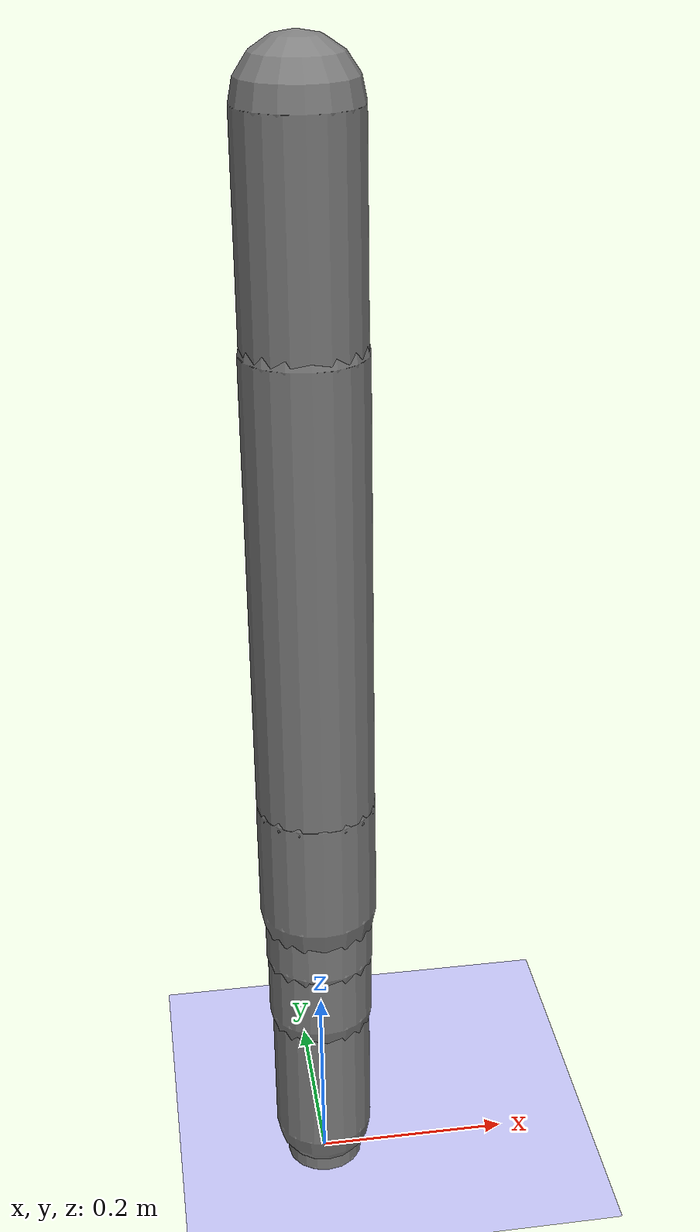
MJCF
<?xml version='1.0' encoding='UTF-8'?>
<mujoco model="robot_model">
  <worldbody>
    <light name="light" pos="0 -3 10" dir="0 0.5 -1" diffuse=".8 .8 .8" specular="0.1 0.1 0.1"/>
    <geom name="floor" type="plane" size="10.0 10.0 0.1" pos="0 0 0" rgba="0.8 0.8 1 1"/>
    <body name="limb0" pos="0 0 0">
      <geom type="capsule" fromto="0 0 0 0 0 0.26233138165368997" size="0.04" density="618.327238250405"/>
      <site type="sphere" size="0.01" name="limb0_site0" pos="0 0 0.19830642828510836"/>
      <site type="sphere" size="0.01" name="limb0_site1" pos="0 0 0.04560058574401782"/>
      <freejoint name="limb0_root"/>
      <body name="limb1" pos="0 0 0.19830642828510836">
        <geom type="capsule" fromto="0 0 0 0 0 0.3827693687641604" size="0.05450373825606916" density="584.4061455168376"/>
        <site type="sphere" size="0.01" name="limb1_site0" pos="0 0 0.1275255353171341"/>
        <body name="limb2" pos="0 0 0.1275255353171341">
          <geom type="capsule" fromto="0 0 0 0 0 0.12406041482013717" size="0.06" density="986.2150518331317"/>
          <site type="sphere" size="0.01" name="limb2_site0" pos="0 0 0.10649884769039768"/>
          <body name="limb3" pos="0 0 0.10649884769039768">
            <geom type="capsule" fromto="0 0 0 0 0 0.3246346816300574" size="0.027985800535247497" density="877.8764988614424"/>
            <site type="sphere" size="0.01" name="limb3_site0" pos="0 0 0.30592291138675143"/>
            <body name="limb4" pos="0 0 0.30592291138675143">
              <geom type="capsule" fromto="0 0 0 0 0 0.38664313349290746" size="0.05825338637690475" density="1129.6842087872121"/>
              <joint name="joint_limb3_limb4_0" type="hinge" axis="0 0 1" range="-32.23675465955068 32.23675465955068" damping="5.0"/>
            </body>
            <joint name="joint_limb2_limb3_0" type="hinge" axis="1 0 0" range="-102.98912811609488 102.98912811609488" damping="5.0"/>
          </body>
          <joint name="joint_limb1_limb2_0" type="hinge" axis="1 0 0" range="-52.283974665468925 52.283974665468925" damping="5.0"/>
        </body>
        <joint name="joint_limb0_limb1_0" type="hinge" axis="0 1 0" range="-118.27639451941653 118.27639451941653" damping="5.0"/>
      </body>
      <body name="limb5" pos="0 0 0.04560058574401782">
        <geom type="capsule" fromto="0 0 0 0 0 0.22512675434995574" size="0.05169031872016689" density="728.5632008156655"/>
        <site type="sphere" size="0.01" name="limb5_site0" pos="0 0 0.04112360060909631"/>
        <site type="sphere" size="0.01" name="limb5_site1" pos="0 0 0.1653112235324185"/>
        <body name="limb6" pos="0 0 0.04112360060909631">
          <geom type="capsule" fromto="0 0 0 0 0 0.49506834786402915" size="0.03678532303791788" density="732.350866634508"/>
          <site type="sphere" size="0.01" name="limb6_site0" pos="0 0 0.48864896668293684"/>
          <site type="sphere" size="0.01" name="limb6_site1" pos="0 0 0.17997974781822323"/>
          <body name="limb7" pos="0 0 0.48864896668293684">
            <geom type="capsule" fromto="0 0 0 0 0 0.19835280866970714" size="0.04411414027217507" density="507.15314310444455"/>
            <site type="sphere" size="0.01" name="limb7_site0" pos="0 0 0.1502248823307766"/>
            <body name="limb8" pos="0 0 0.1502248823307766">
              <geom type="capsule" fromto="0 0 0 0 0 0.19891389615533042" size="0.030325208070064356" density="1018.0930803065299"/>
              <joint name="joint_limb7_limb8_0" type="hinge" axis="0 0 1" range="-114.27914104368337 114.27914104368337" damping="5.0"/>
            </body>
            <joint name="joint_limb6_limb7_0" type="hinge" axis="0 1 0" range="-101.73901430779064 101.73901430779064" damping="5.0"/>
          </body>
          <body name="limb9" pos="0 0 0.17997974781822323">
            <geom type="capsule" fromto="0 0 0 0 0 0.17894284299821797" size="0.05566483344233837" density="599.4961849034263"/>
            <joint name="joint_limb6_limb9_0" type="hinge" axis="1 0 0" range="-75.18819932201001 75.18819932201001" damping="5.0"/>
          </body>
          <joint name="joint_limb5_limb6_0" type="hinge" axis="0 0 1" range="-98.208106043741 98.208106043741" damping="5.0"/>
        </body>
        <body name="limb10" pos="0 0 0.1653112235324185">
          <geom type="capsule" fromto="0 0 0 0 0 0.2879295497092825" size="0.04990344700900342" density="660.7067265019084"/>
          <site type="sphere" size="0.01" name="limb10_site0" pos="0 0 0.23449394497914045"/>
          <body name="limb11" pos="0 0 0.23449394497914045">
            <geom type="capsule" fromto="0 0 0 0 0 0.4676759956951593" size="0.05966738873335552" density="631.8729198528299"/>
            <joint name="joint_limb10_limb11_0" type="hinge" axis="1 0 0" range="-113.7215958826881 113.7215958826881" damping="5.0"/>
          </body>
          <joint name="joint_limb5_limb10_0" type="hinge" axis="1 0 0" range="-85.42010042852904 85.42010042852904" damping="5.0"/>
        </body>
        <joint name="joint_limb0_limb5_0" type="hinge" axis="0 0 1" range="-96.21716630603876 96.21716630603876" damping="5.0"/>
      </body>
    </body>
  </worldbody>
  <actuator>
    <position name="position_actuator_joint_limb0_limb1_0" joint="joint_limb0_limb1_0" gear="1.143090706227208" inheritrange="1" kp="10.0"/>
    <position name="position_actuator_joint_limb1_limb2_0" joint="joint_limb1_limb2_0" gear="1.7590088496875573" inheritrange="1" kp="10.0"/>
    <position name="position_actuator_joint_limb2_limb3_0" joint="joint_limb2_limb3_0" gear="1.285844846340357" inheritrange="1" kp="10.0"/>
    <position name="position_actuator_joint_limb3_limb4_0" joint="joint_limb3_limb4_0" gear="0.6866428973515241" inheritrange="1" kp="10.0"/>
    <position name="position_actuator_joint_limb0_limb5_0" joint="joint_limb0_limb5_0" gear="1.7817465554683207" inheritrange="1" kp="10.0"/>
    <position name="position_actuator_joint_limb5_limb6_0" joint="joint_limb5_limb6_0" gear="0.9075785035297382" inheritrange="1" kp="10.0"/>
    <position name="position_actuator_joint_limb6_limb7_0" joint="joint_limb6_limb7_0" gear="0.6855578824392156" inheritrange="1" kp="10.0"/>
    <position name="position_actuator_joint_limb7_limb8_0" joint="joint_limb7_limb8_0" gear="0.7294906149634219" inheritrange="1" kp="10.0"/>
    <position name="position_actuator_joint_limb6_limb9_0" joint="joint_limb6_limb9_0" gear="0.7192497149736763" inheritrange="1" kp="10.0"/>
    <position name="position_actuator_joint_limb5_limb10_0" joint="joint_limb5_limb10_0" gear="0.7164254640385183" inheritrange="1" kp="10.0"/>
    <position name="position_actuator_joint_limb10_limb11_0" joint="joint_limb10_limb11_0" gear="1.29333500268873" inheritrange="1" kp="10.0"/>
  </actuator>
</mujoco>
